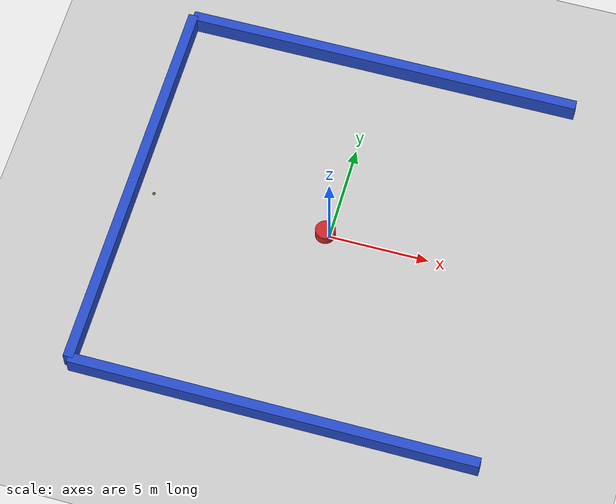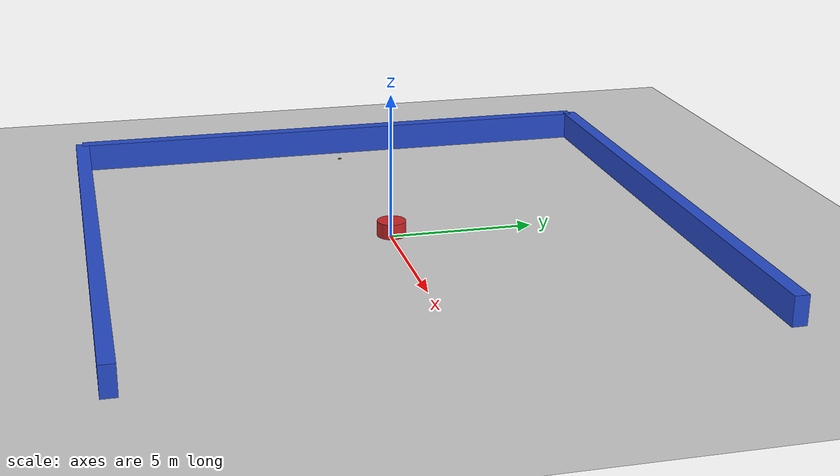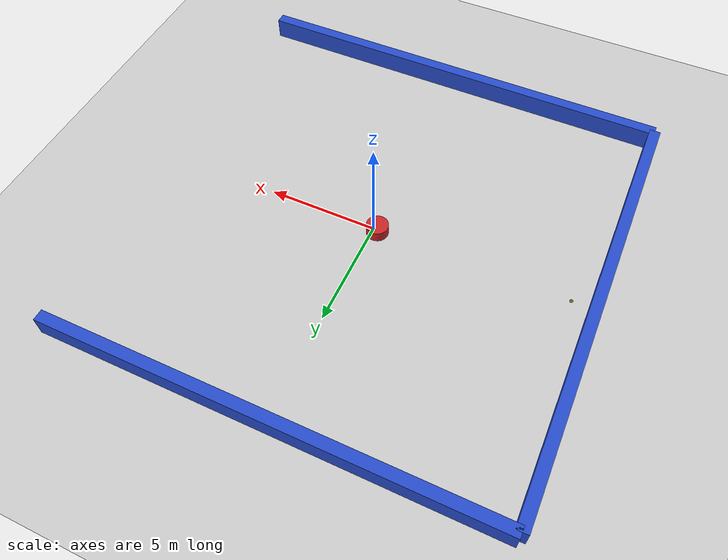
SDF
<sdf version="1.6">
   <world name="default">
      <include>
         <uri>model://ground_plane</uri>
      </include>
      <include>
         <uri>model://sun</uri>
      </include>

    <model name="hardlibobs_117">
      <static>1</static>
      <pose frame="">-0.225000 0.075000 0.000000 0.000000 0.000000 0.000000</pose>
      <link name="link">
        <inertial>
          <mass>1</mass>
          <inertia>
            <ixx>0.145833</ixx>
            <ixy>0</ixy>
            <ixz>0</ixz>
            <iyy>0.145833</iyy>
            <iyz>0</iyz>
            <izz>0.125</izz>
          </inertia>
        </inertial>
        <collision name="collision">
           <geometry>
            <cylinder>
                <radius>0.5000</radius>
                 <length> 1 </length>
            </cylinder>
          </geometry>
           <surface>
            <contact>
              <ode />
            </contact>
            <bounce />
            <friction>
              <torsional>
                <ode />
              </torsional>
              <ode />
            </friction>
          </surface>
        </collision>
        <visual name="visual">
           <geometry>
            <cylinder>
                <radius>0.5000</radius>
                 <length> 1 </length>
            </cylinder>
          </geometry>
          <material>
            <script>
              <name>Gazebo/Red</name>
              <uri>file://media/materials/scripts/gazebo.material</uri>
            </script>
          </material>
        </visual>
        <self_collide>0</self_collide>
        <kinematic>0</kinematic>
        <gravity>1</gravity>
      </link>
      <plugin name="hardlibobs_117" filename="hardlibobs_117.so" />
    </model>

    <model name="mediumlibobs_119">
      <static>1</static>
      <pose frame="">-0.225000 0.075000 0.000000 0.000000 0.000000 0.000000</pose>
      <link name="link">
        <inertial>
          <mass>1</mass>
          <inertia>
            <ixx>0.145833</ixx>
            <ixy>0</ixy>
            <ixz>0</ixz>
            <iyy>0.145833</iyy>
            <iyz>0</iyz>
            <izz>0.125</izz>
          </inertia>
        </inertial>
        <collision name="collision">
           <geometry>
            <cylinder>
                <radius>0.5000</radius>
                 <length> 1 </length>
            </cylinder>
          </geometry>
           <surface>
            <contact>
              <ode />
            </contact>
            <bounce />
            <friction>
              <torsional>
                <ode />
              </torsional>
              <ode />
            </friction>
          </surface>
        </collision>
        <visual name="visual">
           <geometry>
            <cylinder>
                <radius>0.5000</radius>
                 <length> 1 </length>
            </cylinder>
          </geometry>
          <material>
            <script>
              <name>Gazebo/Red</name>
              <uri>file://media/materials/scripts/gazebo.material</uri>
            </script>
          </material>
        </visual>
        <self_collide>0</self_collide>
        <kinematic>0</kinematic>
        <gravity>1</gravity>
      </link>
      <plugin name="mediumlibobs_119" filename="mediumlibobs_119.so" />
    </model>

    <model name="hardlibobs_107">
      <static>1</static>
      <pose frame="">-0.225000 0.075000 0.000000 0.000000 0.000000 0.000000</pose>
      <link name="link">
        <inertial>
          <mass>1</mass>
          <inertia>
            <ixx>0.145833</ixx>
            <ixy>0</ixy>
            <ixz>0</ixz>
            <iyy>0.145833</iyy>
            <iyz>0</iyz>
            <izz>0.125</izz>
          </inertia>
        </inertial>
        <collision name="collision">
           <geometry>
            <cylinder>
                <radius>0.5000</radius>
                 <length> 1 </length>
            </cylinder>
          </geometry>
           <surface>
            <contact>
              <ode />
            </contact>
            <bounce />
            <friction>
              <torsional>
                <ode />
              </torsional>
              <ode />
            </friction>
          </surface>
        </collision>
        <visual name="visual">
           <geometry>
            <cylinder>
                <radius>0.5000</radius>
                 <length> 1 </length>
            </cylinder>
          </geometry>
          <material>
            <script>
              <name>Gazebo/Red</name>
              <uri>file://media/materials/scripts/gazebo.material</uri>
            </script>
          </material>
        </visual>
        <self_collide>0</self_collide>
        <kinematic>0</kinematic>
        <gravity>1</gravity>
      </link>
      <plugin name="hardlibobs_107" filename="hardlibobs_107.so" />
    </model>

    <model name="mediumlibobs_40">
      <static>1</static>
      <pose frame="">-0.225000 0.075000 0.000000 0.000000 0.000000 0.000000</pose>
      <link name="link">
        <inertial>
          <mass>1</mass>
          <inertia>
            <ixx>0.145833</ixx>
            <ixy>0</ixy>
            <ixz>0</ixz>
            <iyy>0.145833</iyy>
            <iyz>0</iyz>
            <izz>0.125</izz>
          </inertia>
        </inertial>
        <collision name="collision">
           <geometry>
            <cylinder>
                <radius>0.5000</radius>
                 <length> 1 </length>
            </cylinder>
          </geometry>
           <surface>
            <contact>
              <ode />
            </contact>
            <bounce />
            <friction>
              <torsional>
                <ode />
              </torsional>
              <ode />
            </friction>
          </surface>
        </collision>
        <visual name="visual">
           <geometry>
            <cylinder>
                <radius>0.5000</radius>
                 <length> 1 </length>
            </cylinder>
          </geometry>
          <material>
            <script>
              <name>Gazebo/Red</name>
              <uri>file://media/materials/scripts/gazebo.material</uri>
            </script>
          </material>
        </visual>
        <self_collide>0</self_collide>
        <kinematic>0</kinematic>
        <gravity>1</gravity>
      </link>
      <plugin name="mediumlibobs_40" filename="mediumlibobs_40.so" />
    </model>

    <model name="mediumlibobs_42">
      <static>1</static>
      <pose frame="">-0.225000 0.075000 0.000000 0.000000 0.000000 0.000000</pose>
      <link name="link">
        <inertial>
          <mass>1</mass>
          <inertia>
            <ixx>0.145833</ixx>
            <ixy>0</ixy>
            <ixz>0</ixz>
            <iyy>0.145833</iyy>
            <iyz>0</iyz>
            <izz>0.125</izz>
          </inertia>
        </inertial>
        <collision name="collision">
           <geometry>
            <cylinder>
                <radius>0.5000</radius>
                 <length> 1 </length>
            </cylinder>
          </geometry>
           <surface>
            <contact>
              <ode />
            </contact>
            <bounce />
            <friction>
              <torsional>
                <ode />
              </torsional>
              <ode />
            </friction>
          </surface>
        </collision>
        <visual name="visual">
           <geometry>
            <cylinder>
                <radius>0.5000</radius>
                 <length> 1 </length>
            </cylinder>
          </geometry>
          <material>
            <script>
              <name>Gazebo/Red</name>
              <uri>file://media/materials/scripts/gazebo.material</uri>
            </script>
          </material>
        </visual>
        <self_collide>0</self_collide>
        <kinematic>0</kinematic>
        <gravity>1</gravity>
      </link>
      <plugin name="mediumlibobs_42" filename="mediumlibobs_42.so" />
    </model>

      <model name="back_wall">
      <static>1</static>\   <pose frame="">-10 0 .5 0 0 0</pose>        <link name="box_link">

	<collision name="collision">
            <geometry>
              <box>
                <size>.5 20 1</size>
              </box>
            </geometry>
           <surface>
            <contact>
              <ode />
            </contact>
            <bounce />
            <friction>
              <torsional>
                <ode />
              </torsional>
              <ode />
            </friction>
          </surface>
        </collision>

          <visual name="visual">
            <geometry>
              <box>
                <size>.5 20 1</size>
              </box>
            </geometry>
          <material>
                 <script>
                     <name>Gazebo/Blue</name>
                         <uri>file://media/materials/scripts/gazebo.material</uri>
                         </script>
                     </material>
          </visual>
        </link>
      </model>
      <model name="top_wall">
      <static>1</static>
       <pose frame="">0 10 .5 0 0 0</pose>        <link name="box_link">

	<collision name="collision">
           <geometry>
              <box>
                <size>20 .5 1</size>
              </box>
            </geometry>
           <surface>
            <contact>
              <ode />
            </contact>
            <bounce />
            <friction>
              <torsional>
                <ode />
              </torsional>
              <ode />
            </friction>
          </surface>
        </collision>
          <visual name="visual">
            <geometry>
              <box>
                <size>20 .5 1</size>
              </box>
            </geometry>
          <material>
                 <script>
                     <name>Gazebo/Blue</name>
                         <uri>file://media/materials/scripts/gazebo.material</uri>
                         </script>
                     </material>
          </visual>
        </link>
      </model>
      <model name="bottom_wall">
      <static>1</static>
       <pose frame="">0 -10 .5 0 0 0</pose>        <link name="box_link">
	<collision name="collision">
            <geometry>
              <box>
                <size>20 .5 1</size>
              </box>
            </geometry>
           <surface>
            <contact>
              <ode />
            </contact>
            <bounce />
            <friction>
              <torsional>
                <ode />
              </torsional>
              <ode />
            </friction>
          </surface>
        </collision>
          <visual name="visual">
            <geometry>
              <box>
                <size>20 .5 1</size>
              </box>
            </geometry>
          <material>
                 <script>
                     <name>Gazebo/Blue</name>
                         <uri>file://media/materials/scripts/gazebo.material</uri>
                         </script>
                     </material>
          </visual>
        </link>
      </model>
   <model name="goal"><static>1</static><pose frame="">-9.00000 0.000000 0.000000 0.000000 0.000000 0.000000</pose><link name="link"><inertial><mass>1</mass><inertia><ixx>0.145833</ixx><ixy>0</ixy><ixz>0</ixz><iyy>0.145833</iyy><iyz>0</iyz><izz>0.125</izz></inertia></inertial><collision name="collision"><geometry><cylinder><radius>0.075000</radius><length>1</length></cylinder></geometry><max_contacts>10</max_contacts><surface><contact><ode /></contact><bounce /><friction><torsional><ode /></torsional><ode /></friction></surface></collision><visual name="visual"><geometry><cylinder><radius>0.075000</radius><length>0.001</length></cylinder></geometry><material><ambient>0 1 0 1</ambient><diffuse>0.4 0.4 0.1 1</diffuse></material><material><script><name>Gazebo/Grey</name><uri>file://media/materials/scripts/gazebo.material</uri></script></material></visual><self_collide>0</self_collide><kinematic>0</kinematic><gravity>0</gravity></link></model></world>
</sdf>
